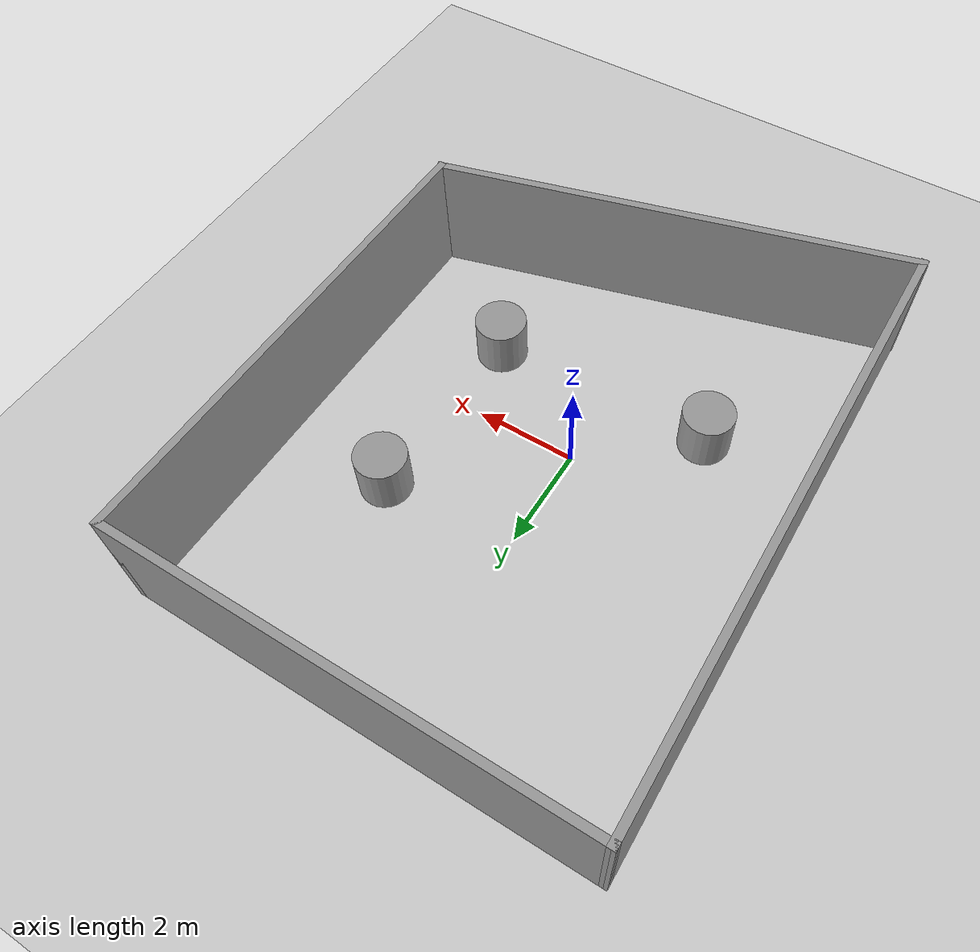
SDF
<sdf version="1.6">
 <world name="default">
  <light name="sun" type="directional">
   <pose>0 0 10 0 -0 0</pose>
   <diffuse>0.8 0.8 0.8 1</diffuse>
   <specular>0.2 0.2 0.2 1</specular>
   <attenuation>
    <range>1000</range>
    <constant>0.9</constant>
    <linear>0.01</linear>
    <quadratic>0.001</quadratic>
   </attenuation>
   <direction>-0.5 0.1 -0.9</direction>
  </light>
  <model name="ground_plane">
   <static>1</static>
   <link name="link">
    <collision name="collision">
     <geometry><plane><normal>0 0 1</normal><size>100 100</size></plane></geometry>
     <surface>
      <contact><collide_bitmask>65535</collide_bitmask></contact>
      <friction><ode><mu>100</mu><mu2>50</mu2></ode></friction>
     </surface>
    </collision>
    <visual name="visual">
     <cast_shadows>0</cast_shadows>
     <geometry><plane><normal>0 0 1</normal><size>100 100</size></plane></geometry>
     <material>
      <script><uri>file://media/materials/scripts/gazebo.material</uri><name>Gazebo/Grey</name></script>
     </material>
    </visual>
   </link>
  </model>
  <gravity>0 0 -9.8</gravity>
  <magnetic_field>6e-06 2.3e-05 -4.2e-05</magnetic_field>
  <atmosphere type="adiabatic"/>
  <physics name="default_physics" default="0" type="ode">
   <max_step_size>0.001</max_step_size>
   <real_time_factor>1</real_time_factor>
   <real_time_update_rate>1000</real_time_update_rate>
  </physics>
  <scene><ambient>0.4 0.4 0.4 1</ambient><background>0.7 0.7 0.7 1</background><shadows>1</shadows></scene>
  <spherical_coordinates>
   <surface_model>EARTH_WGS84</surface_model>
   <latitude_deg>0</latitude_deg>
   <longitude_deg>0</longitude_deg>
   <elevation>0</elevation>
   <heading_deg>0</heading_deg>
  </spherical_coordinates>
  <model name="unit_cylinder">
   <pose>2.63163 2.23834 0.499998 3e-06 -3e-06 0</pose>
   <link name="link">
    <inertial>
     <mass>1</mass>
     <inertia><ixx>0.145833</ixx><ixy>0</ixy><ixz>0</ixz><iyy>0.145833</iyy><iyz>0</iyz><izz>0.125</izz></inertia>
    </inertial>
    <collision name="collision">
     <geometry><cylinder><radius>0.5</radius><length>1</length></cylinder></geometry>
    </collision>
    <visual name="visual">
     <geometry><cylinder><radius>0.5</radius><length>1</length></cylinder></geometry>
     <material>
      <script><name>Gazebo/Grey</name><uri>file://media/materials/scripts/gazebo.material</uri></script>
     </material>
    </visual>
   </link>
  </model>
  <model name="unit_cylinder_0">
   <pose>2.46666 -1.48388 0.499992 -3e-06 3e-06 0</pose>
   <link name="link">
    <inertial>
     <mass>1</mass>
     <inertia><ixx>0.145833</ixx><ixy>0</ixy><ixz>0</ixz><iyy>0.145833</iyy><iyz>0</iyz><izz>0.125</izz></inertia>
    </inertial>
    <collision name="collision">
     <geometry><cylinder><radius>0.5</radius><length>1</length></cylinder></geometry>
    </collision>
    <visual name="visual">
     <geometry><cylinder><radius>0.5</radius><length>1</length></cylinder></geometry>
     <material>
      <script><name>Gazebo/Grey</name><uri>file://media/materials/scripts/gazebo.material</uri></script>
     </material>
    </visual>
   </link>
  </model>
  <model name="unit_cylinder_2">
   <pose>-1.96691 -1.60792 0.499998 3e-06 -4e-06 0</pose>
   <link name="link">
    <inertial>
     <mass>1</mass>
     <inertia><ixx>0.145833</ixx><ixy>0</ixy><ixz>0</ixz><iyy>0.145833</iyy><iyz>0</iyz><izz>0.125</izz></inertia>
    </inertial>
    <collision name="collision">
     <geometry><cylinder><radius>0.5</radius><length>1</length></cylinder></geometry>
    </collision>
    <visual name="visual">
     <geometry><cylinder><radius>0.5</radius><length>1</length></cylinder></geometry>
     <material>
      <script><name>Gazebo/Grey</name><uri>file://media/materials/scripts/gazebo.material</uri></script>
     </material>
    </visual>
   </link>
  </model>
  <model name="wall">
   <pose>0.34844 0.26368 0 0 -0 0</pose>
   <link name="Wall_6">
    <collision name="Wall_6_Collision">
     <geometry><box><size>9.25 0.15 2.5</size></box></geometry>
     <pose>0 0 1.25 0 -0 0</pose>
    </collision>
    <visual name="Wall_6_Visual">
     <pose>0 0 1.25 0 -0 0</pose>
     <geometry><box><size>9.25 0.15 2.5</size></box></geometry>
     <material>
      <script><uri>file://media/materials/scripts/gazebo.material</uri><name>Gazebo/Grey</name></script>
      <ambient>1 1 1 1</ambient>
     </material>
     <meta><layer>0</layer></meta>
    </visual>
    <pose>-0.00821 5.89319 0 0 -0 0</pose>
   </link>
   <link name="Wall_7">
    <collision name="Wall_7_Collision">
     <geometry><box><size>9.5 0.15 2.5</size></box></geometry>
     <pose>0 0 1.25 0 -0 0</pose>
    </collision>
    <visual name="Wall_7_Visual">
     <pose>0 0 1.25 0 -0 0</pose>
     <geometry><box><size>9.5 0.15 2.5</size></box></geometry>
     <material>
      <script><uri>file://media/materials/scripts/gazebo.material</uri><name>Gazebo/Grey</name></script>
      <ambient>1 1 1 1</ambient>
     </material>
     <meta><layer>0</layer></meta>
    </visual>
    <pose>4.54179 1.21819 0 0 -0 -1.5708</pose>
   </link>
   <link name="Wall_8">
    <collision name="Wall_8_Collision">
     <geometry><box><size>9.5 0.15 2.5</size></box></geometry>
     <pose>0 0 1.25 0 -0 0</pose>
    </collision>
    <visual name="Wall_8_Visual">
     <pose>0 0 1.25 0 -0 0</pose>
     <geometry><box><size>9.5 0.15 2.5</size></box></geometry>
     <material>
      <script><uri>file://media/materials/scripts/gazebo.material</uri><name>Gazebo/Grey</name></script>
      <ambient>1 1 1 1</ambient>
     </material>
     <meta><layer>0</layer></meta>
    </visual>
    <pose>0.026086 -4.66679 0 0 -0 -2.87979</pose>
   </link>
   <link name="Wall_9">
    <collision name="Wall_9_Collision">
     <geometry><box><size>11.9202 0.15 2.5</size></box></geometry>
     <pose>0 0 1.25 0 -0 0</pose>
    </collision>
    <visual name="Wall_9_Visual">
     <pose>0 0 1.25 0 -0 0</pose>
     <geometry><box><size>11.9202 0.15 2.5</size></box></geometry>
     <material>
      <script><uri>file://media/materials/scripts/gazebo.material</uri><name>Gazebo/Grey</name></script>
      <ambient>1 1 1 1</ambient>
     </material>
     <meta><layer>0</layer></meta>
    </visual>
    <pose>-4.52391 0.00821 0 0 -0 1.57662</pose>
   </link>
   <static>1</static>
  </model>
 </world>
</sdf>
